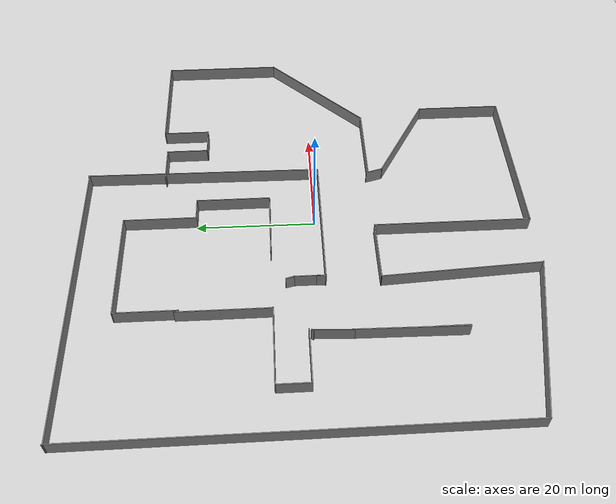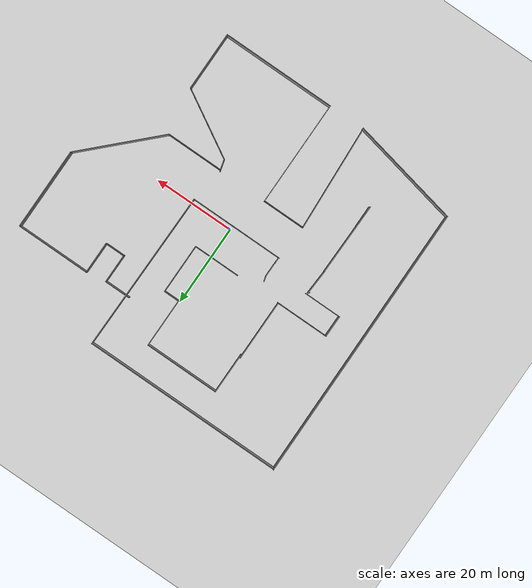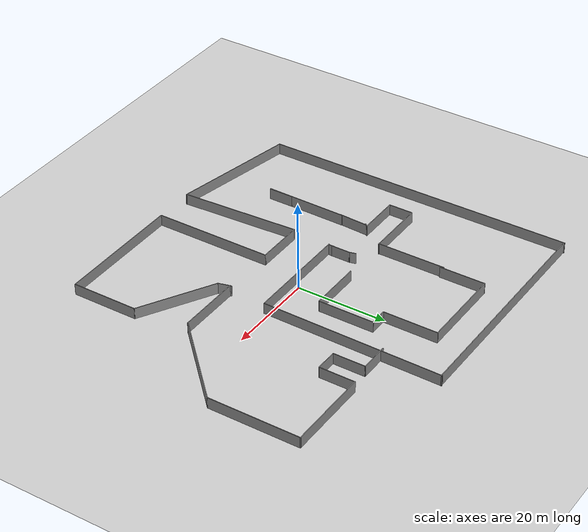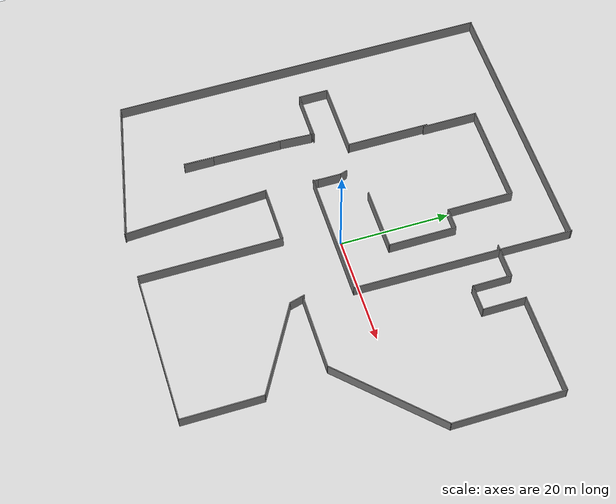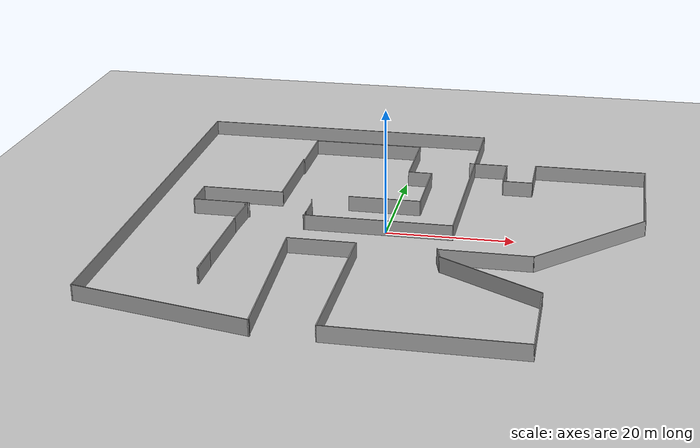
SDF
<sdf version="1.7">
 <world name="default">
  <light name="sun" type="directional">
   <pose>0 0 10 0 -0 0</pose>
   <diffuse>0.8 0.8 0.8 1</diffuse>
   <specular>0.2 0.2 0.2 1</specular>
   <attenuation>
    <range>1000</range>
    <constant>0.9</constant>
    <linear>0.01</linear>
    <quadratic>0.001</quadratic>
   </attenuation>
   <direction>-0.5 0.1 -0.9</direction>
   <spot><inner_angle>0</inner_angle><outer_angle>0</outer_angle><falloff>0</falloff></spot>
  </light>
  <model name="ground_plane">
   <static>1</static>
   <link name="link">
    <collision name="collision">
     <geometry><plane><normal>0 0 1</normal><size>100 100</size></plane></geometry>
     <surface>
      <contact><collide_bitmask>65535</collide_bitmask></contact>
      <friction><ode><mu>100</mu><mu2>50</mu2></ode></friction>
     </surface>
    </collision>
    <visual name="visual">
     <cast_shadows>0</cast_shadows>
     <geometry><plane><normal>0 0 1</normal><size>100 100</size></plane></geometry>
     <material>
      <script><uri>file://media/materials/scripts/gazebo.material</uri><name>Gazebo/Grey</name></script>
     </material>
    </visual>
   </link>
  </model>
  <gravity>0 0 -9.8</gravity>
  <magnetic_field>6e-06 2.3e-05 -4.2e-05</magnetic_field>
  <atmosphere type="adiabatic"/>
  <physics type="ode">
   <max_step_size>0.001</max_step_size>
   <real_time_factor>1</real_time_factor>
   <real_time_update_rate>1000</real_time_update_rate>
  </physics>
  <scene><ambient>0.4 0.4 0.4 1</ambient><background>0.7 0.7 0.7 1</background><shadows>1</shadows></scene>
  <audio><device>default</device></audio>
  <spherical_coordinates>
   <surface_model>EARTH_WGS84</surface_model>
   <latitude_deg>0</latitude_deg>
   <longitude_deg>0</longitude_deg>
   <elevation>0</elevation>
   <heading_deg>0</heading_deg>
  </spherical_coordinates>
  <model name="Untitled">
   <pose>0.263439 1.4957 0 0 -0 0</pose>
   <link name="Wall_0">
    <collision name="Wall_0_Collision">
     <geometry><box><size>1.54982 0.15 2.5</size></box></geometry>
     <pose>0 0 1.25 0 -0 0</pose>
    </collision>
    <visual name="Wall_0_Visual">
     <pose>0 0 1.25 0 -0 0</pose>
     <geometry><box><size>1.54982 0.15 2.5</size></box></geometry>
     <material>
      <script><uri>file://media/materials/scripts/gazebo.material</uri><name>Gazebo/Grey</name></script>
      <ambient>1 1 1 1</ambient>
     </material>
     <meta><layer>0</layer></meta>
    </visual>
    <pose>-13.0304 -1.87511 0 0 -0 -1.5708</pose>
   </link>
   <link name="Wall_1">
    <collision name="Wall_1_Collision">
     <geometry><box><size>23.5 0.15 2.5</size></box></geometry>
     <pose>0 0 1.25 0 -0 0</pose>
    </collision>
    <visual name="Wall_1_Visual">
     <pose>0 0 1.25 0 -0 0</pose>
     <geometry><box><size>23.5 0.15 2.5</size></box></geometry>
     <material>
      <script><uri>file://media/materials/scripts/gazebo.material</uri><name>Gazebo/Grey</name></script>
      <ambient>1 1 1 1</ambient>
     </material>
     <meta><layer>0</layer></meta>
    </visual>
    <pose>-1.46305 -2.57502 0 0 -0 0</pose>
   </link>
   <link name="Wall_10">
    <collision name="Wall_10_Collision">
     <geometry><box><size>5.5 0.15 2.5</size></box></geometry>
     <pose>0 0 1.25 0 -0 0</pose>
    </collision>
    <visual name="Wall_10_Visual">
     <pose>0 0 1.25 0 -0 0</pose>
     <geometry><box><size>5.5 0.15 2.5</size></box></geometry>
     <material>
      <script><uri>file://media/materials/scripts/gazebo.material</uri><name>Gazebo/Grey</name></script>
      <ambient>1 1 1 1</ambient>
     </material>
     <meta><layer>0</layer></meta>
    </visual>
    <pose>-31.9142 3.2441 0 0 -0 -1.5708</pose>
   </link>
   <link name="Wall_11">
    <collision name="Wall_11_Collision">
     <geometry><box><size>9.25 0.15 2.5</size></box></geometry>
     <pose>0 0 1.25 0 -0 0</pose>
    </collision>
    <visual name="Wall_11_Visual">
     <pose>0 0 1.25 0 -0 0</pose>
     <geometry><box><size>9.25 0.15 2.5</size></box></geometry>
     <material>
      <script><uri>file://media/materials/scripts/gazebo.material</uri><name>Gazebo/Grey</name></script>
      <ambient>1 1 1 1</ambient>
     </material>
     <meta><layer>0</layer></meta>
    </visual>
    <pose>-27.3642 0.569105 0 0 -0 0</pose>
   </link>
   <link name="Wall_13">
    <collision name="Wall_13_Collision">
     <geometry><box><size>5.5 0.15 2.5</size></box></geometry>
     <pose>0 0 1.25 0 -0 0</pose>
    </collision>
    <visual name="Wall_13_Visual">
     <pose>0 0 1.25 0 -0 0</pose>
     <geometry><box><size>5.5 0.15 2.5</size></box></geometry>
     <material>
      <script><uri>file://media/materials/scripts/gazebo.material</uri><name>Gazebo/Grey</name></script>
      <ambient>1 1 1 1</ambient>
     </material>
     <meta><layer>0</layer></meta>
    </visual>
    <pose>-23.4022 -21.1349 0 0 -0 -1.5708</pose>
   </link>
   <link name="Wall_14">
    <collision name="Wall_14_Collision">
     <geometry><box><size>18.0773 0.15 2.5</size></box></geometry>
     <pose>0 0 1.25 0 -0 0</pose>
    </collision>
    <visual name="Wall_14_Visual">
     <pose>0 0 1.25 0 -0 0</pose>
     <geometry><box><size>18.0773 0.15 2.5</size></box></geometry>
     <material>
      <script><uri>file://media/materials/scripts/gazebo.material</uri><name>Gazebo/Grey</name></script>
      <ambient>1 1 1 1</ambient>
     </material>
     <meta><layer>0</layer></meta>
    </visual>
    <pose>-23.4022 -14.8471 0 0 -0 1.55699</pose>
   </link>
   <link name="Wall_17">
    <collision name="Wall_17_Collision">
     <geometry><box><size>14.25 0.15 2.5</size></box></geometry>
     <pose>0 0 1.25 0 -0 0</pose>
    </collision>
    <visual name="Wall_17_Visual">
     <pose>0 0 1.25 0 -0 0</pose>
     <geometry><box><size>14.25 0.15 2.5</size></box></geometry>
     <material>
      <script><uri>file://media/materials/scripts/gazebo.material</uri><name>Gazebo/Grey</name></script>
      <ambient>1 1 1 1</ambient>
     </material>
     <meta><layer>0</layer></meta>
    </visual>
    <pose>16.2921 -11.4453 0 0 -0 0</pose>
   </link>
   <link name="Wall_18">
    <collision name="Wall_18_Collision">
     <geometry><box><size>22.75 0.15 2.5</size></box></geometry>
     <pose>0 0 1.25 0 -0 0</pose>
    </collision>
    <visual name="Wall_18_Visual">
     <pose>0 0 1.25 0 -0 0</pose>
     <geometry><box><size>22.75 0.15 2.5</size></box></geometry>
     <material>
      <script><uri>file://media/materials/scripts/gazebo.material</uri><name>Gazebo/Grey</name></script>
      <ambient>1 1 1 1</ambient>
     </material>
     <meta><layer>0</layer></meta>
    </visual>
    <pose>31.3324 -3.45503 0 0 -0 0.785398</pose>
   </link>
   <link name="Wall_19">
    <collision name="Wall_19_Collision">
     <geometry><box><size>20.5 0.15 2.5</size></box></geometry>
     <pose>0 0 1.25 0 -0 0</pose>
    </collision>
    <visual name="Wall_19_Visual">
     <pose>0 0 1.25 0 -0 0</pose>
     <geometry><box><size>20.5 0.15 2.5</size></box></geometry>
     <material>
      <script><uri>file://media/materials/scripts/gazebo.material</uri><name>Gazebo/Grey</name></script>
      <ambient>1 1 1 1</ambient>
     </material>
     <meta><layer>0</layer></meta>
    </visual>
    <pose>39.3227 14.7103 0 0 -0 1.5708</pose>
   </link>
   <link name="Wall_2">
    <collision name="Wall_2_Collision">
     <geometry><box><size>40.2876 0.15 2.5</size></box></geometry>
     <pose>0 0 1.25 0 -0 0</pose>
    </collision>
    <visual name="Wall_2_Visual">
     <pose>0 0 1.25 0 -0 0</pose>
     <geometry><box><size>40.2876 0.15 2.5</size></box></geometry>
     <material>
      <script><uri>file://media/materials/scripts/gazebo.material</uri><name>Gazebo/Grey</name></script>
      <ambient>1 1 1 1</ambient>
     </material>
     <meta><layer>0</layer></meta>
    </visual>
    <pose>10.533 17.4927 0 0 -0 1.56016</pose>
   </link>
   <link name="Wall_20">
    <collision name="Wall_20_Collision">
     <geometry><box><size>18.5 0.15 2.5</size></box></geometry>
     <pose>0 0 1.25 0 -0 0</pose>
    </collision>
    <visual name="Wall_20_Visual">
     <pose>0 0 1.25 0 -0 0</pose>
     <geometry><box><size>18.5 0.15 2.5</size></box></geometry>
     <material>
      <script><uri>file://media/materials/scripts/gazebo.material</uri><name>Gazebo/Grey</name></script>
      <ambient>1 1 1 1</ambient>
     </material>
     <meta><layer>0</layer></meta>
    </visual>
    <pose>30.1477 24.8853 0 0 -0 3.14159</pose>
   </link>
   <link name="Wall_21">
    <collision name="Wall_21_Collision">
     <geometry><box><size>8 0.15 2.5</size></box></geometry>
     <pose>0 0 1.25 0 -0 0</pose>
    </collision>
    <visual name="Wall_21_Visual">
     <pose>0 0 1.25 0 -0 0</pose>
     <geometry><box><size>8 0.15 2.5</size></box></geometry>
     <material>
      <script><uri>file://media/materials/scripts/gazebo.material</uri><name>Gazebo/Grey</name></script>
      <ambient>1 1 1 1</ambient>
     </material>
     <meta><layer>0</layer></meta>
    </visual>
    <pose>20.9727 20.9603 0 0 -0 -1.5708</pose>
   </link>
   <link name="Wall_22">
    <collision name="Wall_22_Collision">
     <geometry><box><size>5 0.15 2.5</size></box></geometry>
     <pose>0 0 1.25 0 -0 0</pose>
    </collision>
    <visual name="Wall_22_Visual">
     <pose>0 0 1.25 0 -0 0</pose>
     <geometry><box><size>5 0.15 2.5</size></box></geometry>
     <material>
      <script><uri>file://media/materials/scripts/gazebo.material</uri><name>Gazebo/Grey</name></script>
      <ambient>1 1 1 1</ambient>
     </material>
     <meta><layer>0</layer></meta>
    </visual>
    <pose>18.5477 17.0353 0 0 -0 3.14159</pose>
   </link>
   <link name="Wall_23">
    <collision name="Wall_23_Collision">
     <geometry><box><size>7.25 0.15 2.5</size></box></geometry>
     <pose>0 0 1.25 0 -0 0</pose>
    </collision>
    <visual name="Wall_23_Visual">
     <pose>0 0 1.25 0 -0 0</pose>
     <geometry><box><size>7.25 0.15 2.5</size></box></geometry>
     <material>
      <script><uri>file://media/materials/scripts/gazebo.material</uri><name>Gazebo/Grey</name></script>
      <ambient>1 1 1 1</ambient>
     </material>
     <meta><layer>0</layer></meta>
    </visual>
    <pose>16.1227 20.5853 0 0 -0 1.5708</pose>
   </link>
   <link name="Wall_24">
    <collision name="Wall_24_Collision">
     <geometry><box><size>6.5 0.15 2.5</size></box></geometry>
     <pose>0 0 1.25 0 -0 0</pose>
    </collision>
    <visual name="Wall_24_Visual">
     <pose>0 0 1.25 0 -0 0</pose>
     <geometry><box><size>6.5 0.15 2.5</size></box></geometry>
     <material>
      <script><uri>file://media/materials/scripts/gazebo.material</uri><name>Gazebo/Grey</name></script>
      <ambient>1 1 1 1</ambient>
     </material>
     <meta><layer>0</layer></meta>
    </visual>
    <pose>12.9477 24.1353 0 0 -0 3.14159</pose>
   </link>
   <link name="Wall_26">
    <collision name="Wall_26_Collision">
     <geometry><box><size>10.75 0.15 2.5</size></box></geometry>
     <pose>0 0 1.25 0 -0 0</pose>
    </collision>
    <visual name="Wall_26_Visual">
     <pose>0 0 1.25 0 -0 0</pose>
     <geometry><box><size>10.75 0.15 2.5</size></box></geometry>
     <material>
      <script><uri>file://media/materials/scripts/gazebo.material</uri><name>Gazebo/Grey</name></script>
      <ambient>1 1 1 1</ambient>
     </material>
     <meta><layer>0</layer></meta>
    </visual>
    <pose>-8.32032 -11.3471 0 0 -0 0</pose>
   </link>
   <link name="Wall_27">
    <collision name="Wall_27_Collision">
     <geometry><box><size>26.25 0.15 2.5</size></box></geometry>
     <pose>0 0 1.25 0 -0 0</pose>
    </collision>
    <visual name="Wall_27_Visual">
     <pose>0 0 1.25 0 -0 0</pose>
     <geometry><box><size>26.25 0.15 2.5</size></box></geometry>
     <material>
      <script><uri>file://media/materials/scripts/gazebo.material</uri><name>Gazebo/Grey</name></script>
      <ambient>1 1 1 1</ambient>
     </material>
     <meta><layer>0</layer></meta>
    </visual>
    <pose>-3.02032 -24.3971 0 0 -0 -1.5708</pose>
   </link>
   <link name="Wall_28">
    <collision name="Wall_28_Collision">
     <geometry><box><size>28.5 0.15 2.5</size></box></geometry>
     <pose>0 0 1.25 0 -0 0</pose>
    </collision>
    <visual name="Wall_28_Visual">
     <pose>0 0 1.25 0 -0 0</pose>
     <geometry><box><size>28.5 0.15 2.5</size></box></geometry>
     <material>
      <script><uri>file://media/materials/scripts/gazebo.material</uri><name>Gazebo/Grey</name></script>
      <ambient>1 1 1 1</ambient>
     </material>
     <meta><layer>0</layer></meta>
    </visual>
    <pose>11.1547 -37.4471 0 0 -0 0</pose>
   </link>
   <link name="Wall_29">
    <collision name="Wall_29_Collision">
     <geometry><box><size>14.75 0.15 2.5</size></box></geometry>
     <pose>0 0 1.25 0 -0 0</pose>
    </collision>
    <visual name="Wall_29_Visual">
     <pose>0 0 1.25 0 -0 0</pose>
     <geometry><box><size>14.75 0.15 2.5</size></box></geometry>
     <material>
      <script><uri>file://media/materials/scripts/gazebo.material</uri><name>Gazebo/Grey</name></script>
      <ambient>1 1 1 1</ambient>
     </material>
     <meta><layer>0</layer></meta>
    </visual>
    <pose>25.3297 -30.1471 0 0 -0 1.5708</pose>
   </link>
   <link name="Wall_3">
    <collision name="Wall_3_Collision">
     <geometry><box><size>50.25 0.15 2.5</size></box></geometry>
     <pose>0 0 1.25 0 -0 0</pose>
    </collision>
    <visual name="Wall_3_Visual">
     <pose>0 0 1.25 0 -0 0</pose>
     <geometry><box><size>50.25 0.15 2.5</size></box></geometry>
     <material>
      <script><uri>file://media/materials/scripts/gazebo.material</uri><name>Gazebo/Grey</name></script>
      <ambient>1 1 1 1</ambient>
     </material>
     <meta><layer>0</layer></meta>
    </visual>
    <pose>-14.3035 37.418 0 0 -0 3.14159</pose>
   </link>
   <link name="Wall_30">
    <collision name="Wall_30_Collision">
     <geometry><box><size>18 0.15 2.5</size></box></geometry>
     <pose>0 0 1.25 0 -0 0</pose>
    </collision>
    <visual name="Wall_30_Visual">
     <pose>0 0 1.25 0 -0 0</pose>
     <geometry><box><size>18 0.15 2.5</size></box></geometry>
     <material>
      <script><uri>file://media/materials/scripts/gazebo.material</uri><name>Gazebo/Grey</name></script>
      <ambient>1 1 1 1</ambient>
     </material>
     <meta><layer>0</layer></meta>
    </visual>
    <pose>17.6004 -18.3846 0 0 -0 2.61799</pose>
   </link>
   <link name="Wall_31">
    <collision name="Wall_31_Collision">
     <geometry><box><size>3 0.15 2.5</size></box></geometry>
     <pose>0 0 1.25 0 -0 0</pose>
    </collision>
    <visual name="Wall_31_Visual">
     <pose>0 0 1.25 0 -0 0</pose>
     <geometry><box><size>3 0.15 2.5</size></box></geometry>
     <material>
      <script><uri>file://media/materials/scripts/gazebo.material</uri><name>Gazebo/Grey</name></script>
      <ambient>1 1 1 1</ambient>
     </material>
     <meta><layer>0</layer></meta>
    </visual>
    <pose>9.50231 -12.5457 0 0 -0 1.8326</pose>
   </link>
   <link name="Wall_33">
    <collision name="Wall_33_Collision">
     <geometry><box><size>0.5 0.15 2.5</size></box></geometry>
     <pose>0 0 1.25 0 -0 0</pose>
    </collision>
    <visual name="Wall_33_Visual">
     <pose>0 0 1.25 0 -0 0</pose>
     <geometry><box><size>0.5 0.15 2.5</size></box></geometry>
     <material>
      <script><uri>file://media/materials/scripts/gazebo.material</uri><name>Gazebo/Grey</name></script>
      <ambient>1 1 1 1</ambient>
     </material>
     <meta><layer>0</layer></meta>
    </visual>
    <pose>-23.1389 0.065692 0 0 -0 -2.35619</pose>
   </link>
   <link name="Wall_35">
    <collision name="Wall_35_Collision">
     <geometry><box><size>4.25 0.15 2.5</size></box></geometry>
     <pose>0 0 1.25 0 -0 0</pose>
    </collision>
    <visual name="Wall_35_Visual">
     <pose>0 0 1.25 0 -0 0</pose>
     <geometry><box><size>4.25 0.15 2.5</size></box></geometry>
     <material>
      <script><uri>file://media/materials/scripts/gazebo.material</uri><name>Gazebo/Grey</name></script>
      <ambient>1 1 1 1</ambient>
     </material>
     <meta><layer>0</layer></meta>
    </visual>
    <pose>-12.991 0.383118 0 0 -0 1.5708</pose>
   </link>
   <link name="Wall_36">
    <collision name="Wall_36_Collision">
     <geometry><box><size>1.5 0.15 2.5</size></box></geometry>
     <pose>0 0 1.25 0 -0 0</pose>
    </collision>
    <visual name="Wall_36_Visual">
     <pose>0 0 1.25 0 -0 0</pose>
     <geometry><box><size>1.5 0.15 2.5</size></box></geometry>
     <material>
      <script><uri>file://media/materials/scripts/gazebo.material</uri><name>Gazebo/Grey</name></script>
      <ambient>1 1 1 1</ambient>
     </material>
     <meta><layer>0</layer></meta>
    </visual>
    <pose>-13.1657 3.08512 0 0 -0 1.8326</pose>
   </link>
   <link name="Wall_38">
    <collision name="Wall_38_Collision">
     <geometry><box><size>6.57722 0.15 2.5</size></box></geometry>
     <pose>0 0 1.25 0 -0 0</pose>
    </collision>
    <visual name="Wall_38_Visual">
     <pose>0 0 1.25 0 -0 0</pose>
     <geometry><box><size>6.57722 0.15 2.5</size></box></geometry>
     <material>
      <script><uri>file://media/materials/scripts/gazebo.material</uri><name>Gazebo/Grey</name></script>
      <ambient>1 1 1 1</ambient>
     </material>
     <meta><layer>0</layer></meta>
    </visual>
    <pose>-23.1805 -3.01992 0 0 -0 1.51932</pose>
   </link>
   <link name="Wall_4">
    <collision name="Wall_4_Collision">
     <geometry><box><size>69.7056 0.15 2.5</size></box></geometry>
     <pose>0 0 1.25 0 -0 0</pose>
    </collision>
    <visual name="Wall_4_Visual">
     <pose>0 0 1.25 0 -0 0</pose>
     <geometry><box><size>69.7056 0.15 2.5</size></box></geometry>
     <material>
      <script><uri>file://media/materials/scripts/gazebo.material</uri><name>Gazebo/Grey</name></script>
      <ambient>1 1 1 1</ambient>
     </material>
     <meta><layer>0</layer></meta>
    </visual>
    <pose>-39.2145 2.78281 0 0 -0 -1.5668</pose>
   </link>
   <link name="Wall_40">
    <collision name="Wall_40_Collision">
     <geometry><box><size>10.25 0.15 2.5</size></box></geometry>
     <pose>0 0 1.25 0 -0 0</pose>
    </collision>
    <visual name="Wall_40_Visual">
     <pose>0 0 1.25 0 -0 0</pose>
     <geometry><box><size>10.25 0.15 2.5</size></box></geometry>
     <material>
      <script><uri>file://media/materials/scripts/gazebo.material</uri><name>Gazebo/Grey</name></script>
      <ambient>1 1 1 1</ambient>
     </material>
     <meta><layer>0</layer></meta>
    </visual>
    <pose>-18.507 25.4341 0 0 -0 1.5708</pose>
   </link>
   <link name="Wall_41">
    <collision name="Wall_41_Collision">
     <geometry><box><size>18.75 0.15 2.5</size></box></geometry>
     <pose>0 0 1.25 0 -0 0</pose>
    </collision>
    <visual name="Wall_41_Visual">
     <pose>0 0 1.25 0 -0 0</pose>
     <geometry><box><size>18.75 0.15 2.5</size></box></geometry>
     <material>
      <script><uri>file://media/materials/scripts/gazebo.material</uri><name>Gazebo/Grey</name></script>
      <ambient>1 1 1 1</ambient>
     </material>
     <meta><layer>0</layer></meta>
    </visual>
    <pose>-9.20703 30.4841 0 0 -0 0</pose>
   </link>
   <link name="Wall_42">
    <collision name="Wall_42_Collision">
     <geometry><box><size>12.25 0.15 2.5</size></box></geometry>
     <pose>0 0 1.25 0 -0 0</pose>
    </collision>
    <visual name="Wall_42_Visual">
     <pose>0 0 1.25 0 -0 0</pose>
     <geometry><box><size>12.25 0.15 2.5</size></box></geometry>
     <material>
      <script><uri>file://media/materials/scripts/gazebo.material</uri><name>Gazebo/Grey</name></script>
      <ambient>1 1 1 1</ambient>
     </material>
     <meta><layer>0</layer></meta>
    </visual>
    <pose>0.092971 24.4341 0 0 -0 -1.5708</pose>
   </link>
   <link name="Wall_43">
    <collision name="Wall_43_Collision">
     <geometry><box><size>4 0.15 2.5</size></box></geometry>
     <pose>0 0 1.25 0 -0 0</pose>
    </collision>
    <visual name="Wall_43_Visual">
     <pose>0 0 1.25 0 -0 0</pose>
     <geometry><box><size>4 0.15 2.5</size></box></geometry>
     <material>
      <script><uri>file://media/materials/scripts/gazebo.material</uri><name>Gazebo/Grey</name></script>
      <ambient>1 1 1 1</ambient>
     </material>
     <meta><layer>0</layer></meta>
    </visual>
    <pose>2.01797 18.3841 0 0 -0 0</pose>
   </link>
   <link name="Wall_44">
    <collision name="Wall_44_Collision">
     <geometry><box><size>12.5 0.15 2.5</size></box></geometry>
     <pose>0 0 1.25 0 -0 0</pose>
    </collision>
    <visual name="Wall_44_Visual">
     <pose>0 0 1.25 0 -0 0</pose>
     <geometry><box><size>12.5 0.15 2.5</size></box></geometry>
     <material>
      <script><uri>file://media/materials/scripts/gazebo.material</uri><name>Gazebo/Grey</name></script>
      <ambient>1 1 1 1</ambient>
     </material>
     <meta><layer>0</layer></meta>
    </visual>
    <pose>3.94297 12.2091 0 0 -0 -1.5708</pose>
   </link>
   <link name="Wall_45">
    <collision name="Wall_45_Collision">
     <geometry><box><size>11.75 0.15 2.5</size></box></geometry>
     <pose>0 0 1.25 0 -0 0</pose>
    </collision>
    <visual name="Wall_45_Visual">
     <pose>0 0 1.25 0 -0 0</pose>
     <geometry><box><size>11.75 0.15 2.5</size></box></geometry>
     <material>
      <script><uri>file://media/materials/scripts/gazebo.material</uri><name>Gazebo/Grey</name></script>
      <ambient>1 1 1 1</ambient>
     </material>
     <meta><layer>0</layer></meta>
    </visual>
    <pose>-1.85703 6.03414 0 0 -0 3.14159</pose>
   </link>
   <link name="Wall_5">
    <collision name="Wall_5_Collision">
     <geometry><box><size>27.6363 0.15 2.5</size></box></geometry>
     <pose>0 0 1.25 0 -0 0</pose>
    </collision>
    <visual name="Wall_5_Visual">
     <pose>0 0 1.25 0 -0 0</pose>
     <geometry><box><size>27.6363 0.15 2.5</size></box></geometry>
     <material>
      <script><uri>file://media/materials/scripts/gazebo.material</uri><name>Gazebo/Grey</name></script>
      <ambient>1 1 1 1</ambient>
     </material>
     <meta><layer>0</layer></meta>
    </visual>
    <pose>-25.5082 -34.7711 0 0 -0 -0.203421</pose>
   </link>
   <link name="Wall_6">
    <collision name="Wall_6_Collision">
     <geometry><box><size>26.3913 0.15 2.5</size></box></geometry>
     <pose>0 0 1.25 0 -0 0</pose>
    </collision>
    <visual name="Wall_6_Visual">
     <pose>0 0 1.25 0 -0 0</pose>
     <geometry><box><size>26.3913 0.15 2.5</size></box></geometry>
     <material>
      <script><uri>file://media/materials/scripts/gazebo.material</uri><name>Gazebo/Grey</name></script>
      <ambient>1 1 1 1</ambient>
     </material>
     <meta><layer>0</layer></meta>
    </visual>
    <pose>-12.8882 -24.4473 0 0 -0 1.62663</pose>
   </link>
   <link name="Wall_8">
    <collision name="Wall_8_Collision">
     <geometry><box><size>15.25 0.15 2.5</size></box></geometry>
     <pose>0 0 1.25 0 -0 0</pose>
    </collision>
    <visual name="Wall_8_Visual">
     <pose>0 0 1.25 0 -0 0</pose>
     <geometry><box><size>15.25 0.15 2.5</size></box></geometry>
     <material>
      <script><uri>file://media/materials/scripts/gazebo.material</uri><name>Gazebo/Grey</name></script>
      <ambient>1 1 1 1</ambient>
     </material>
     <meta><layer>0</layer></meta>
    </visual>
    <pose>-18.7769 13.4691 0 0 -0 -1.5708</pose>
   </link>
   <link name="Wall_9">
    <collision name="Wall_9_Collision">
     <geometry><box><size>13.4117 0.15 2.5</size></box></geometry>
     <pose>0 0 1.25 0 -0 0</pose>
    </collision>
    <visual name="Wall_9_Visual">
     <pose>0 0 1.25 0 -0 0</pose>
     <geometry><box><size>13.4117 0.15 2.5</size></box></geometry>
     <material>
      <script><uri>file://media/materials/scripts/gazebo.material</uri><name>Gazebo/Grey</name></script>
      <ambient>1 1 1 1</ambient>
     </material>
     <meta><layer>0</layer></meta>
    </visual>
    <pose>-25.2837 5.91911 0 0 -0 3.14159</pose>
   </link>
   <static>1</static>
  </model>
 </world>
</sdf>
